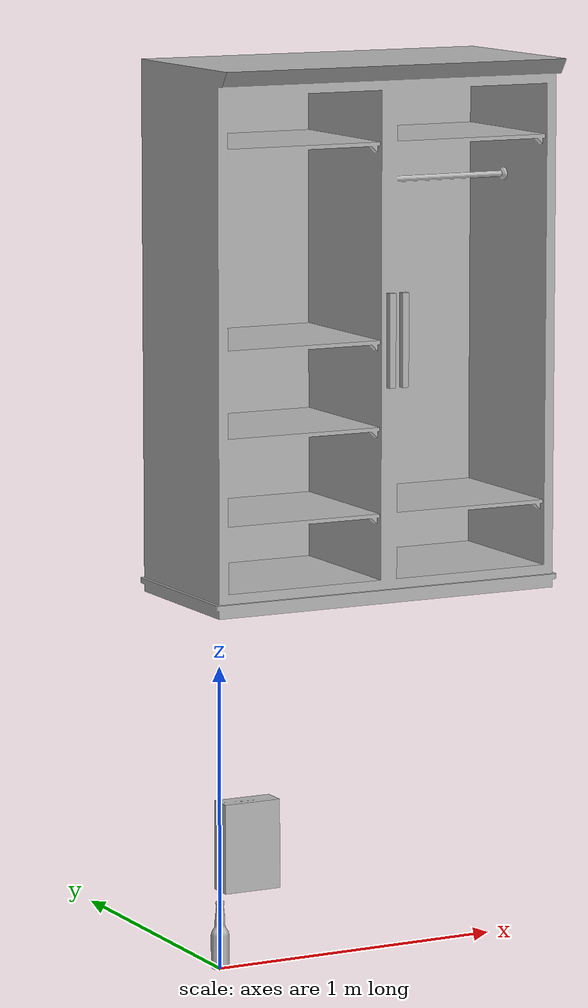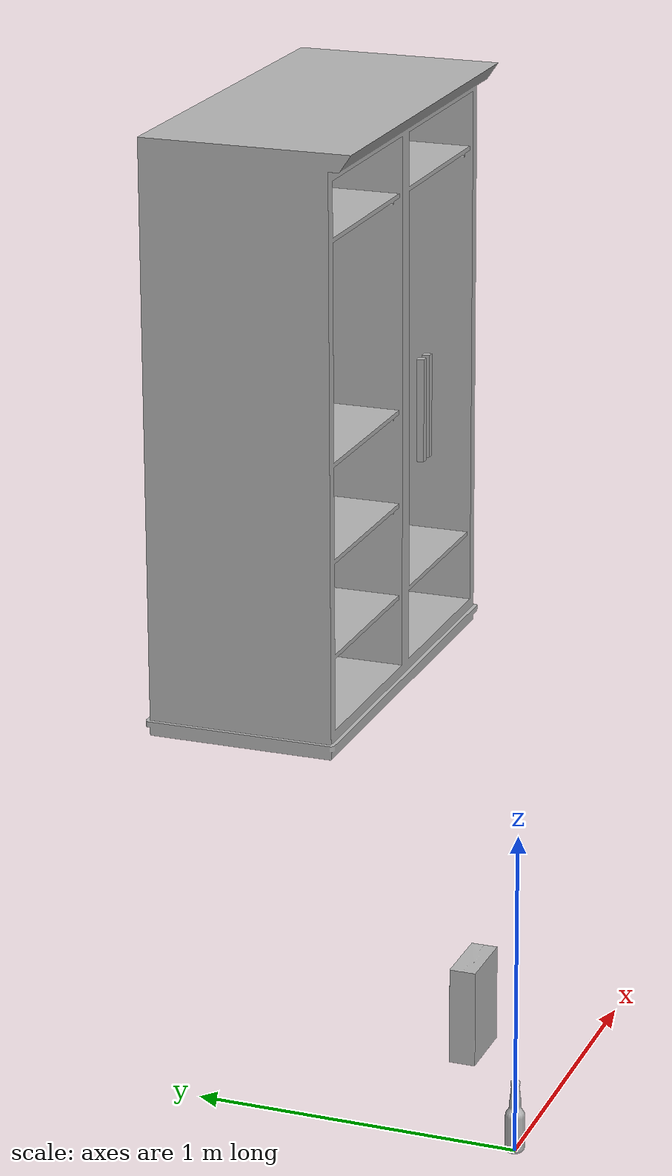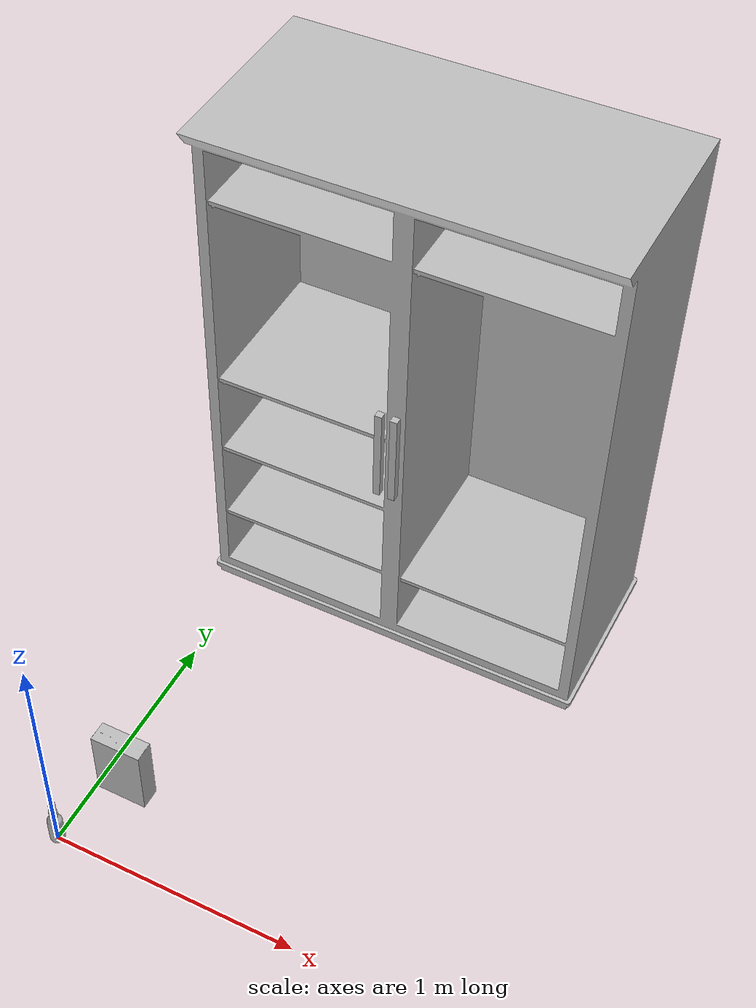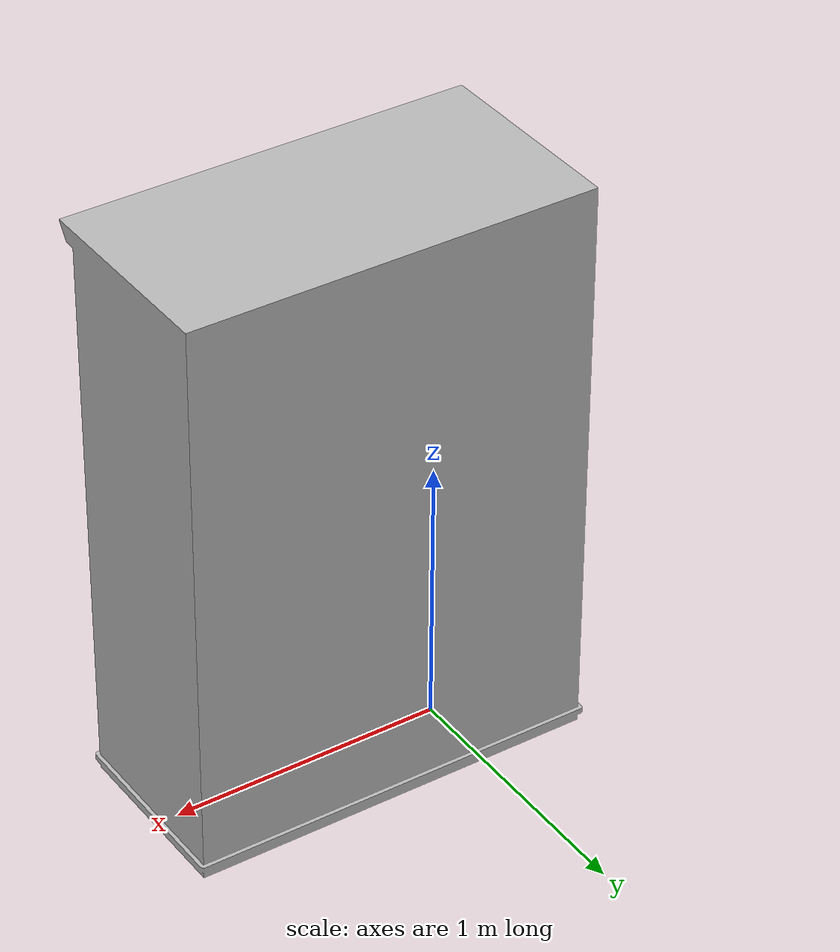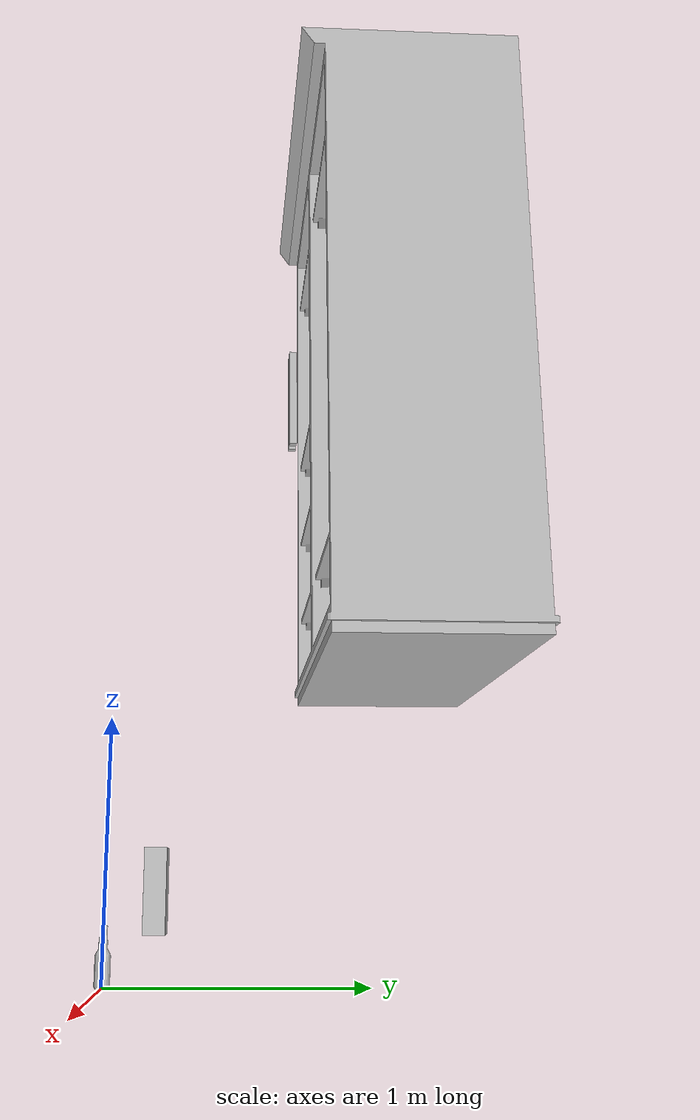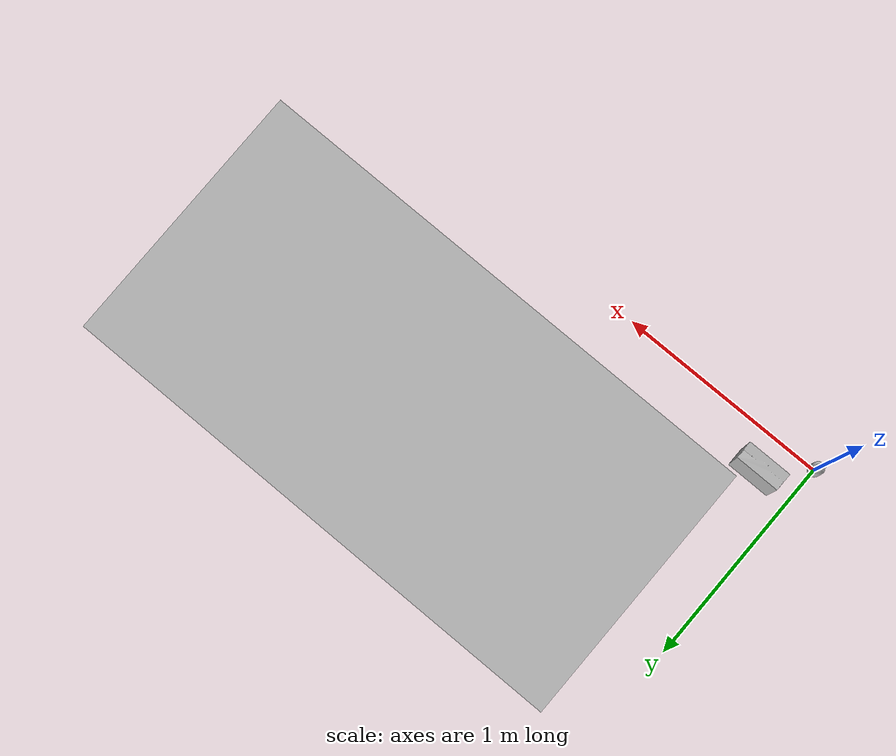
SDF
<?xml version="1.0"?>
<!-- Minimal generated SDF -->
<sdf version='1.6'>
  <model name='multiple_objects'>
    <link name='house_root'>
      <pose>0 0 0 0 0 0</pose>
    </link>

<!-- Beer bottle -->
   <link name="link_beer_bottle">
    <pose>0 0 0 0. 0.0 0.0</pose>
    <inertial>
      <pose frame="">0.0000e+00 0.0000e+00 8.3000e-02 0.0000e+00 0.0000e+00 0.0000e+00</pose>
      <mass>0.887</mass>
      <inertia>
        <ixx>0.003</ixx>
        <ixy>0</ixy>
        <ixz>0</ixz>
        <iyy>0.003</iyy>
        <iyz>0</iyz>
        <izz>0.001</izz>
      </inertia>
    </inertial>
    <visual name="link_beer_bottle">
      <pose frame="">0.0000e+00 0.0000e+00 0.0000e+00 0.0000e+00 0.0000e+00 0.0000e+00</pose>
      <geometry>
        <mesh>
          <uri>beer_bottle/meshes/link_beer_bottle.obj</uri>
          <scale>1.0000e+00 1.0000e+00 1.0000e+00</scale>
        </mesh>
      </geometry>
      <material>
        <drake:diffuse_map>beer_bottle/meshes/link_beer_bottle_Bake1_pbr_diffuse.png</drake:diffuse_map>
        <drake:normal_map>beer_bottle/meshes/link_beer_bottle_Bake1_pbr_normal.png</drake:normal_map>
        <drake:roughness_map>beer_bottle/meshes/link_beer_bottle_Bake1_pbr_roughness.png</drake:roughness_map>
        <drake:metalness_map>beer_bottle/meshes/link_beer_bottle_Bake1_pbr_metalness.png</drake:metalness_map>
        <drake:alpha_map>beer_bottle/meshes/link_beer_bottle_Bake1_pbr_alpha.png</drake:alpha_map>
      </material>
    </visual>
    <collision name="Cylinder">
      <pose frame="">0.0000e+00 0.0000e+00 0.0000e+00 0.0000e+00 0.0000e+00 0.0000e+00</pose>
      <geometry>
        <mesh>
          <uri>beer_bottle/meshes/Cylinder.obj</uri>
          <scale>1.0000e+00 1.0000e+00 1.0000e+00</scale>
          <drake:declare_convex/>
        </mesh>
      </geometry>
    </collision>
    <collision name="Cylinder.001">
      <pose frame="">0.0000e+00 0.0000e+00 0.0000e+00 0.0000e+00 0.0000e+00 0.0000e+00</pose>
      <geometry>
        <mesh>
          <uri>beer_bottle/meshes/Cylinder.001.obj</uri>
          <scale>1.0000e+00 1.0000e+00 1.0000e+00</scale>
          <drake:declare_convex/>
        </mesh>
      </geometry>
    </collision>
  </link>

  <joint name="house_root_to_bear_bottle" type="fixed">
    <child>link_beer_bottle</child>
    <parent>house_root</parent>
  </joint>

<!-- Cereal box -->
  <link name="link_cereal_box">
    <pose>0.2 0.2 0.2 0 0.0 0.0</pose>
    <inertial>
      <pose frame="">0.0000e+00 0.0000e+00 1.7200e-01 0.0000e+00 0.0000e+00 0.0000e+00</pose>
      <mass>0.719</mass>
      <inertia>
        <ixx>0.008</ixx>
        <ixy>0</ixy>
        <ixz>0</ixz>
        <iyy>0.011</iyy>
        <iyz>0</iyz>
        <izz>0.004</izz>
      </inertia>
    </inertial>
    <visual name="link_cereal_box">
      <pose frame="">0.0000e+00 0.0000e+00 0.0000e+00 0.0000e+00 0.0000e+00 0.0000e+00</pose>
      <geometry>
        <mesh>
          <uri>cereal_box/meshes/link_cereal_box.obj</uri>
          <scale>1.0000e+00 1.0000e+00 1.0000e+00</scale>
        </mesh>
      </geometry>
      <material>
        <drake:diffuse_map>cereal_box/meshes/link_cereal_box_Bake1_pbr_diffuse.png</drake:diffuse_map>
        <drake:specular_map>cereal_box/meshes/link_cereal_box_Bake1_pbr_specular.png</drake:specular_map>
        <drake:roughness_map>cereal_box/meshes/link_cereal_box_Bake1_pbr_roughness.png</drake:roughness_map>
      </material>
    </visual>
    <collision name="cereal_box_hull_1">
      <pose frame="">0.0000e+00 0.0000e+00 0.0000e+00 0.0000e+00 0.0000e+00 0.0000e+00</pose>
      <geometry>
        <mesh>
          <uri>cereal_box/meshes/cereal_box_hull_1.obj</uri>
          <scale>1.0000e+00 1.0000e+00 1.0000e+00</scale>
          <drake:declare_convex/>
        </mesh>
      </geometry>
    </collision>
  </link>

  <joint name="cereal_box_root_to_cereal_box" type="fixed">
    <child>link_cereal_box</child>
    <parent>house_root</parent>
  </joint>

<!-- Storage cabinet body -->
   <link name="link_storage_cabinet_body">
      <pose>1.0 1.0 1.0 0 0.0 0.0</pose>
      <inertial>
        <pose frame="">-7.0000e-03 6.1000e-02 9.4000e-01 0.0000e+00 0.0000e+00 0.0000e+00</pose>
        <mass>198.026</mass>
        <inertia>
          <ixx>92.421</ixx>
          <ixy>0</ixy>
          <ixz>0</ixz>
          <iyy>117.554</iyy>
          <iyz>0</iyz>
          <izz>39.481</izz>
        </inertia>
      </inertial>
      <visual name="link_storage_cabinet_body">
        <pose frame="">0.0000e+00 0.0000e+00 0.0000e+00 0.0000e+00 0.0000e+00 0.0000e+00</pose>
        <geometry>
          <mesh>
            <uri>storage_cabinet/meshes/link_storage_cabinet_body.obj</uri>
            <scale>1.0000e+00 1.0000e+00 1.0000e+00</scale>
          </mesh>
        </geometry>
        <material>
          <drake:diffuse_map>storage_cabinet/meshes/link_storage_cabinet_body_Bake1_pbr_diffuse.png</drake:diffuse_map>
          <drake:normal_map>storage_cabinet/meshes/link_storage_cabinet_body_Bake1_pbr_normal.png</drake:normal_map>
          <drake:specular_map>storage_cabinet/meshes/link_storage_cabinet_body_Bake1_pbr_specular.png</drake:specular_map>
          <drake:roughness_map>storage_cabinet/meshes/link_storage_cabinet_body_Bake1_pbr_roughness.png</drake:roughness_map>
          <drake:metalness_map>storage_cabinet/meshes/link_storage_cabinet_body_Bake1_pbr_metalness.png</drake:metalness_map>
        </material>
      </visual>
      <collision name="link_storage_cabinet_body.001_hull_1">
        <pose frame="">0.0000e+00 0.0000e+00 0.0000e+00 0.0000e+00 0.0000e+00 0.0000e+00</pose>
        <geometry>
          <mesh>
            <uri>storage_cabinet/meshes/link_storage_cabinet_body.001_hull_1.obj</uri>
            <scale>1.0000e+00 1.0000e+00 1.0000e+00</scale>
            <drake:declare_convex/>
          </mesh>
        </geometry>
      </collision>
      <collision name="link_storage_cabinet_body.001_hull_2">
        <pose frame="">0.0000e+00 0.0000e+00 0.0000e+00 0.0000e+00 0.0000e+00 0.0000e+00</pose>
        <geometry>
          <mesh>
            <uri>storage_cabinet/meshes/link_storage_cabinet_body.001_hull_2.obj</uri>
            <scale>1.0000e+00 1.0000e+00 1.0000e+00</scale>
            <drake:declare_convex/>
          </mesh>
        </geometry>
      </collision>
      <collision name="link_storage_cabinet_body.001_hull_3">
        <pose frame="">0.0000e+00 0.0000e+00 0.0000e+00 0.0000e+00 0.0000e+00 0.0000e+00</pose>
        <geometry>
          <mesh>
            <uri>storage_cabinet/meshes/link_storage_cabinet_body.001_hull_3.obj</uri>
            <scale>1.0000e+00 1.0000e+00 1.0000e+00</scale>
            <drake:declare_convex/>
          </mesh>
        </geometry>
      </collision>
      <collision name="link_storage_cabinet_body.001_hull_4">
        <pose frame="">0.0000e+00 0.0000e+00 0.0000e+00 0.0000e+00 0.0000e+00 0.0000e+00</pose>
        <geometry>
          <mesh>
            <uri>storage_cabinet/meshes/link_storage_cabinet_body.001_hull_4.obj</uri>
            <scale>1.0000e+00 1.0000e+00 1.0000e+00</scale>
            <drake:declare_convex/>
          </mesh>
        </geometry>
      </collision>
      <collision name="link_storage_cabinet_body.001_hull_5">
        <pose frame="">0.0000e+00 0.0000e+00 0.0000e+00 0.0000e+00 0.0000e+00 0.0000e+00</pose>
        <geometry>
          <mesh>
            <uri>storage_cabinet/meshes/link_storage_cabinet_body.001_hull_5.obj</uri>
            <scale>1.0000e+00 1.0000e+00 1.0000e+00</scale>
            <drake:declare_convex/>
          </mesh>
        </geometry>
      </collision>
      <collision name="link_storage_cabinet_body.001_hull_6">
        <pose frame="">0.0000e+00 0.0000e+00 0.0000e+00 0.0000e+00 0.0000e+00 0.0000e+00</pose>
        <geometry>
          <mesh>
            <uri>storage_cabinet/meshes/link_storage_cabinet_body.001_hull_6.obj</uri>
            <scale>1.0000e+00 1.0000e+00 1.0000e+00</scale>
            <drake:declare_convex/>
          </mesh>
        </geometry>
      </collision>
      <collision name="link_storage_cabinet_body.001_hull_7">
        <pose frame="">0.0000e+00 0.0000e+00 0.0000e+00 0.0000e+00 0.0000e+00 0.0000e+00</pose>
        <geometry>
          <mesh>
            <uri>storage_cabinet/meshes/link_storage_cabinet_body.001_hull_7.obj</uri>
            <scale>1.0000e+00 1.0000e+00 1.0000e+00</scale>
            <drake:declare_convex/>
          </mesh>
        </geometry>
      </collision>
      <collision name="link_storage_cabinet_body.002_hull_1">
        <pose frame="">0.0000e+00 0.0000e+00 0.0000e+00 0.0000e+00 0.0000e+00 0.0000e+00</pose>
        <geometry>
          <mesh>
            <uri>storage_cabinet/meshes/link_storage_cabinet_body.002_hull_1.obj</uri>
            <scale>1.0000e+00 1.0000e+00 1.0000e+00</scale>
            <drake:declare_convex/>
          </mesh>
        </geometry>
      </collision>
      <collision name="link_storage_cabinet_body.003_hull_1">
        <pose frame="">0.0000e+00 0.0000e+00 0.0000e+00 0.0000e+00 0.0000e+00 0.0000e+00</pose>
        <geometry>
          <mesh>
            <uri>storage_cabinet/meshes/link_storage_cabinet_body.003_hull_1.obj</uri>
            <scale>1.0000e+00 1.0000e+00 1.0000e+00</scale>
            <drake:declare_convex/>
          </mesh>
        </geometry>
      </collision>
      <collision name="link_storage_cabinet_body.004_hull_1">
        <pose frame="">0.0000e+00 0.0000e+00 0.0000e+00 0.0000e+00 0.0000e+00 0.0000e+00</pose>
        <geometry>
          <mesh>
            <uri>storage_cabinet/meshes/link_storage_cabinet_body.004_hull_1.obj</uri>
            <scale>1.0000e+00 1.0000e+00 1.0000e+00</scale>
            <drake:declare_convex/>
          </mesh>
        </geometry>
      </collision>
      <collision name="link_storage_cabinet_body.005_hull_1">
        <pose frame="">0.0000e+00 0.0000e+00 0.0000e+00 0.0000e+00 0.0000e+00 0.0000e+00</pose>
        <geometry>
          <mesh>
            <uri>storage_cabinet/meshes/link_storage_cabinet_body.005_hull_1.obj</uri>
            <scale>1.0000e+00 1.0000e+00 1.0000e+00</scale>
            <drake:declare_convex/>
          </mesh>
        </geometry>
      </collision>
      <collision name="link_storage_cabinet_body.006_hull_1">
        <pose frame="">0.0000e+00 0.0000e+00 0.0000e+00 0.0000e+00 0.0000e+00 0.0000e+00</pose>
        <geometry>
          <mesh>
            <uri>storage_cabinet/meshes/link_storage_cabinet_body.006_hull_1.obj</uri>
            <scale>1.0000e+00 1.0000e+00 1.0000e+00</scale>
            <drake:declare_convex/>
          </mesh>
        </geometry>
      </collision>
      <collision name="link_storage_cabinet_body.007_hull_1">
        <pose frame="">0.0000e+00 0.0000e+00 0.0000e+00 0.0000e+00 0.0000e+00 0.0000e+00</pose>
        <geometry>
          <mesh>
            <uri>storage_cabinet/meshes/link_storage_cabinet_body.007_hull_1.obj</uri>
            <scale>1.0000e+00 1.0000e+00 1.0000e+00</scale>
            <drake:declare_convex/>
          </mesh>
        </geometry>
      </collision>
      <collision name="link_storage_cabinet_body.008_hull_1">
        <pose frame="">0.0000e+00 0.0000e+00 0.0000e+00 0.0000e+00 0.0000e+00 0.0000e+00</pose>
        <geometry>
          <mesh>
            <uri>storage_cabinet/meshes/link_storage_cabinet_body.008_hull_1.obj</uri>
            <scale>1.0000e+00 1.0000e+00 1.0000e+00</scale>
            <drake:declare_convex/>
          </mesh>
        </geometry>
      </collision>
    </link>
    <link name="link_storage_cabinet_door_L">
      <pose>1.0 1.0 1.0 0 0.0 0.0</pose>
      <inertial>
        <pose frame="">3.2400e-01 -3.1100e-01 9.3400e-01 0.0000e+00 0.0000e+00 0.0000e+00</pose>
        <mass>15.273</mass>
        <inertia>
          <ixx>3.683</ixx>
          <ixy>0</ixy>
          <ixz>0</ixz>
          <iyy>4.186</iyy>
          <iyz>0</iyz>
          <izz>0.506</izz>
        </inertia>
      </inertial>
      <visual name="link_storage_cabinet_door_L">
        <pose frame="">0.0000e+00 0.0000e+00 0.0000e+00 0.0000e+00 0.0000e+00 0.0000e+00</pose>
        <geometry>
          <mesh>
            <uri>storage_cabinet/meshes/link_storage_cabinet_door_L.obj</uri>
            <scale>1.0000e+00 1.0000e+00 1.0000e+00</scale>
          </mesh>
        </geometry>
        <material>
          <drake:diffuse_map>storage_cabinet/meshes/link_storage_cabinet_door_L_Bake1_pbr_diffuse.png</drake:diffuse_map>
          <drake:normal_map>storage_cabinet/meshes/link_storage_cabinet_door_L_Bake1_pbr_normal.png</drake:normal_map>
          <drake:specular_map>storage_cabinet/meshes/link_storage_cabinet_door_L_Bake1_pbr_specular.png</drake:specular_map>
          <drake:roughness_map>storage_cabinet/meshes/link_storage_cabinet_door_L_Bake1_pbr_roughness.png</drake:roughness_map>
          <drake:metalness_map>storage_cabinet/meshes/link_storage_cabinet_door_L_Bake1_pbr_metalness.png</drake:metalness_map>
        </material>
      </visual>
      <collision name="Cube">
        <pose frame="">0.0000e+00 0.0000e+00 0.0000e+00 0.0000e+00 0.0000e+00 0.0000e+00</pose>
        <geometry>
          <mesh>
            <uri>storage_cabinet/meshes/Cube.obj</uri>
            <scale>1.0000e+00 1.0000e+00 1.0000e+00</scale>
            <drake:declare_convex/>
          </mesh>
        </geometry>
      </collision>
      <collision name="Cube.001">
        <pose frame="">0.0000e+00 0.0000e+00 0.0000e+00 0.0000e+00 0.0000e+00 0.0000e+00</pose>
        <geometry>
          <mesh>
            <uri>storage_cabinet/meshes/Cube.001.obj</uri>
            <scale>1.0000e+00 1.0000e+00 1.0000e+00</scale>
            <drake:declare_convex/>
          </mesh>
        </geometry>
      </collision>
      <collision name="Cube.002">
        <pose frame="">0.0000e+00 0.0000e+00 0.0000e+00 0.0000e+00 0.0000e+00 0.0000e+00</pose>
        <geometry>
          <mesh>
            <uri>storage_cabinet/meshes/Cube.002.obj</uri>
            <scale>1.0000e+00 1.0000e+00 1.0000e+00</scale>
            <drake:declare_convex/>
          </mesh>
        </geometry>
      </collision>
      <collision name="link_storage_cabinet_door_L.001_hull_1">
        <pose frame="">0.0000e+00 0.0000e+00 0.0000e+00 0.0000e+00 0.0000e+00 0.0000e+00</pose>
        <geometry>
          <mesh>
            <uri>storage_cabinet/meshes/link_storage_cabinet_door_L.001_hull_1.obj</uri>
            <scale>1.0000e+00 1.0000e+00 1.0000e+00</scale>
            <drake:declare_convex/>
          </mesh>
        </geometry>
      </collision>
    </link>
    <link name="link_storage_cabinet_door_R">
      <pose>1.0 1.0 1.0 0 0.0 0.0</pose>
      <inertial>
        <pose frame="">-3.2400e-01 -3.1100e-01 9.3400e-01 0.0000e+00 0.0000e+00 0.0000e+00</pose>
        <mass>15.276</mass>
        <inertia>
          <ixx>3.684</ixx>
          <ixy>0</ixy>
          <ixz>0</ixz>
          <iyy>4.188</iyy>
          <iyz>0</iyz>
          <izz>0.506</izz>
        </inertia>
      </inertial>
      <visual name="link_storage_cabinet_door_R">
        <pose frame="">0.0000e+00 0.0000e+00 0.0000e+00 0.0000e+00 0.0000e+00 0.0000e+00</pose>
        <geometry>
          <mesh>
            <uri>storage_cabinet/meshes/link_storage_cabinet_door_R.obj</uri>
            <scale>1.0000e+00 1.0000e+00 1.0000e+00</scale>
          </mesh>
        </geometry>
        <material>
          <drake:diffuse_map>storage_cabinet/meshes/link_storage_cabinet_door_R_Bake1_pbr_diffuse.png</drake:diffuse_map>
          <drake:normal_map>storage_cabinet/meshes/link_storage_cabinet_door_R_Bake1_pbr_normal.png</drake:normal_map>
          <drake:specular_map>storage_cabinet/meshes/link_storage_cabinet_door_R_Bake1_pbr_specular.png</drake:specular_map>
          <drake:roughness_map>storage_cabinet/meshes/link_storage_cabinet_door_R_Bake1_pbr_roughness.png</drake:roughness_map>
          <drake:metalness_map>storage_cabinet/meshes/link_storage_cabinet_door_R_Bake1_pbr_metalness.png</drake:metalness_map>
        </material>
      </visual>
      <collision name="Cube.003">
        <pose frame="">0.0000e+00 0.0000e+00 0.0000e+00 0.0000e+00 0.0000e+00 0.0000e+00</pose>
        <geometry>
          <mesh>
            <uri>storage_cabinet/meshes/Cube.003.obj</uri>
            <scale>1.0000e+00 1.0000e+00 1.0000e+00</scale>
            <drake:declare_convex/>
          </mesh>
        </geometry>
      </collision>
      <collision name="Cube.004">
        <pose frame="">0.0000e+00 0.0000e+00 0.0000e+00 0.0000e+00 0.0000e+00 0.0000e+00</pose>
        <geometry>
          <mesh>
            <uri>storage_cabinet/meshes/Cube.004.obj</uri>
            <scale>1.0000e+00 1.0000e+00 1.0000e+00</scale>
            <drake:declare_convex/>
          </mesh>
        </geometry>
      </collision>
      <collision name="Cube.005">
        <pose frame="">0.0000e+00 0.0000e+00 0.0000e+00 0.0000e+00 0.0000e+00 0.0000e+00</pose>
        <geometry>
          <mesh>
            <uri>storage_cabinet/meshes/Cube.005.obj</uri>
            <scale>1.0000e+00 1.0000e+00 1.0000e+00</scale>
            <drake:declare_convex/>
          </mesh>
        </geometry>
      </collision>
      <collision name="link_storage_cabinet_door_R.001_hull_1">
        <pose frame="">0.0000e+00 0.0000e+00 0.0000e+00 0.0000e+00 0.0000e+00 0.0000e+00</pose>
        <geometry>
          <mesh>
            <uri>storage_cabinet/meshes/link_storage_cabinet_door_R.001_hull_1.obj</uri>
            <scale>1.0000e+00 1.0000e+00 1.0000e+00</scale>
            <drake:declare_convex/>
          </mesh>
        </geometry>
      </collision>
    </link>
    <joint name="link_storage_cabinet_body_link_storage_cabinet_door_L" type="revolute">
      <child>link_storage_cabinet_door_L</child>
      <parent>link_storage_cabinet_body</parent>
      <pose frame="">6.4861e-01 -2.9715e-01 9.5511e-01 0.0000e+00 -0.0000e+00 0.0000e+00</pose>
      <axis>
        <xyz>0.0 0.0 1.0</xyz>
        <limit>
          <effort>0</effort>
          <lower>0.0</lower>
          <upper>1.832595705986023</upper>
        </limit>
        <dynamics>
          <damping>1.0</damping>
        </dynamics>
        <use_parent_model_frame>1</use_parent_model_frame>
      </axis>
    </joint>
    <joint name="link_storage_cabinet_body_link_storage_cabinet_door_R" type="revolute">
      <child>link_storage_cabinet_door_R</child>
      <parent>link_storage_cabinet_body</parent>
      <pose frame="">-6.4853e-01 -2.9713e-01 9.5511e-01 0.0000e+00 -0.0000e+00 0.0000e+00</pose>
      <axis>
        <xyz>0.0 0.0 1.0</xyz>
        <limit>
          <effort>0</effort>
          <lower>-1.832595705986023</lower>
          <upper>0.0</upper>
        </limit>
        <dynamics>
          <damping>1.0</damping>
        </dynamics>
        <use_parent_model_frame>1</use_parent_model_frame>
      </axis>
    </joint>

    <joint name="house_root_to_storage_cabinet" type="fixed">
    <child>link_storage_cabinet_body</child>
    <parent>house_root</parent>
  </joint>
  </model>
</sdf>
